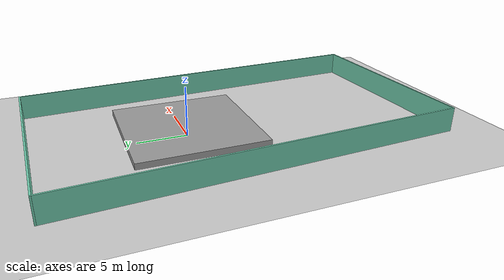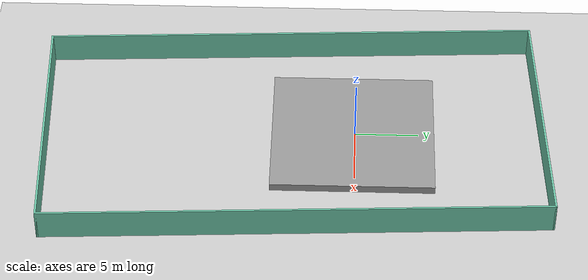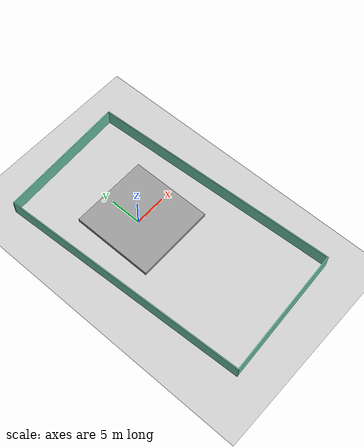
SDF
<sdf version="1.7">
 <world name="default">
  <model name="ground_plane">
   <static>1</static>
   <link name="link">
    <collision name="collision">
     <geometry><plane><normal>0 0 1</normal><size>100 100</size></plane></geometry>
     <surface>
      <contact><collide_bitmask>65535</collide_bitmask></contact>
      <friction><ode><mu>100</mu><mu2>50</mu2></ode></friction>
     </surface>
    </collision>
    <visual name="visual">
     <cast_shadows>0</cast_shadows>
     <geometry><plane><normal>0 0 1</normal><size>100 100</size></plane></geometry>
     <material>
      <script><uri>file://media/materials/scripts/gazebo.material</uri><name>Gazebo/Grey</name></script>
     </material>
    </visual>
   </link>
  </model>
  <model name="unit_box">
   <pose>0.596026 -0.174701 0.636979 -1e-06 2e-06 -2.9e-05</pose>
   <link name="link">
    <inertial>
     <mass>1</mass>
     <inertia>
      <ixx>0.166667</ixx>
      <ixy>0</ixy>
      <ixz>0</ixz>
      <iyy>0.166667</iyy>
      <iyz>0</iyz>
      <izz>0.166667</izz>
     </inertia>
    </inertial>
    <collision name="collision"><geometry><box><size>12.4062 12.7933 0.616157</size></box></geometry></collision>
    <visual name="visual">
     <geometry><box><size>12.4062 12.7933 0.616157</size></box></geometry>
     <material>
      <script><name>Gazebo/Grey</name><uri>file://media/materials/scripts/gazebo.material</uri></script>
     </material>
    </visual>
   </link>
  </model>
  <model name="lab_walls">
   <pose>0.834577 -4.86662 0 0 -0 1.61947</pose>
   <link name="Wall_0">
    <collision name="Wall_0_Collision">
     <geometry><box><size>20.5 0.15 2.5</size></box></geometry>
     <pose>0 0 1.25 0 -0 0</pose>
    </collision>
    <visual name="Wall_0_Visual">
     <pose>0 0 1.25 0 -0 0</pose>
     <geometry><box><size>20.5 0.15 2.5</size></box></geometry>
     <material>
      <script><uri>file://media/materials/scripts/gazebo.material</uri><name>Gazebo/Grey</name></script>
      <ambient>0.435294 0.796078 0.67451 1</ambient>
     </material>
     <meta><layer>0</layer></meta>
    </visual>
    <pose>-19.55 0 0 0 -0 -1.5708</pose>
   </link>
   <link name="Wall_1">
    <collision name="Wall_1_Collision">
     <geometry><box><size>39.25 0.15 2.5</size></box></geometry>
     <pose>0 0 1.25 0 -0 0</pose>
    </collision>
    <visual name="Wall_1_Visual">
     <pose>0 0 1.25 0 -0 0</pose>
     <geometry><box><size>39.25 0.15 2.5</size></box></geometry>
     <material>
      <script><uri>file://media/materials/scripts/gazebo.material</uri><name>Gazebo/Grey</name></script>
      <ambient>0.435294 0.796078 0.67451 1</ambient>
     </material>
     <meta><layer>0</layer></meta>
    </visual>
    <pose>0 -10.175 0 0 -0 0</pose>
   </link>
   <link name="Wall_2">
    <collision name="Wall_2_Collision">
     <geometry><box><size>20.5 0.15 2.5</size></box></geometry>
     <pose>0 0 1.25 0 -0 0</pose>
    </collision>
    <visual name="Wall_2_Visual">
     <pose>0 0 1.25 0 -0 0</pose>
     <geometry><box><size>20.5 0.15 2.5</size></box></geometry>
     <material>
      <script><uri>file://media/materials/scripts/gazebo.material</uri><name>Gazebo/Grey</name></script>
      <ambient>0.435294 0.796078 0.67451 1</ambient>
     </material>
     <meta><layer>0</layer></meta>
    </visual>
    <pose>19.55 0 0 0 -0 1.5708</pose>
   </link>
   <link name="Wall_3">
    <collision name="Wall_3_Collision">
     <geometry><box><size>39.25 0.15 2.5</size></box></geometry>
     <pose>0 0 1.25 0 -0 0</pose>
    </collision>
    <visual name="Wall_3_Visual">
     <pose>0 0 1.25 0 -0 0</pose>
     <geometry><box><size>39.25 0.15 2.5</size></box></geometry>
     <material>
      <script><uri>file://media/materials/scripts/gazebo.material</uri><name>Gazebo/Grey</name></script>
      <ambient>0.435294 0.796078 0.67451 1</ambient>
     </material>
     <meta><layer>0</layer></meta>
    </visual>
    <pose>0 10.175 0 0 -0 3.14159</pose>
   </link>
   <static>1</static>
  </model>
 </world>
</sdf>
